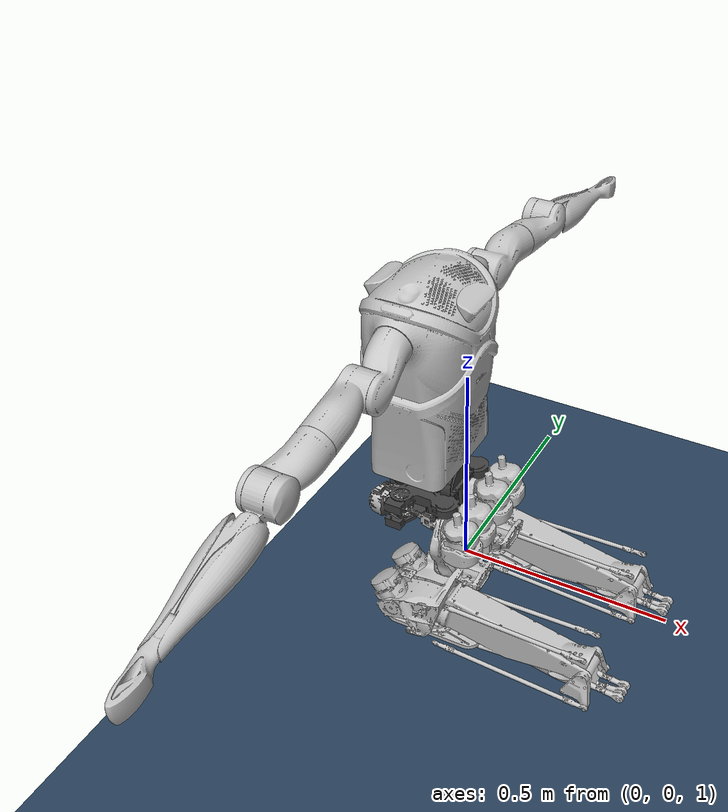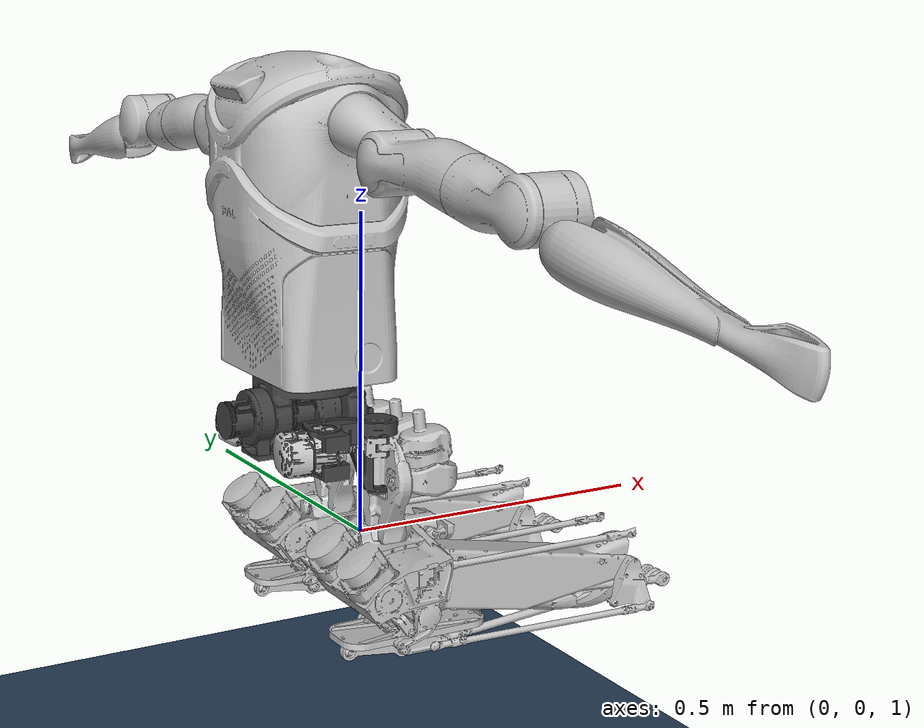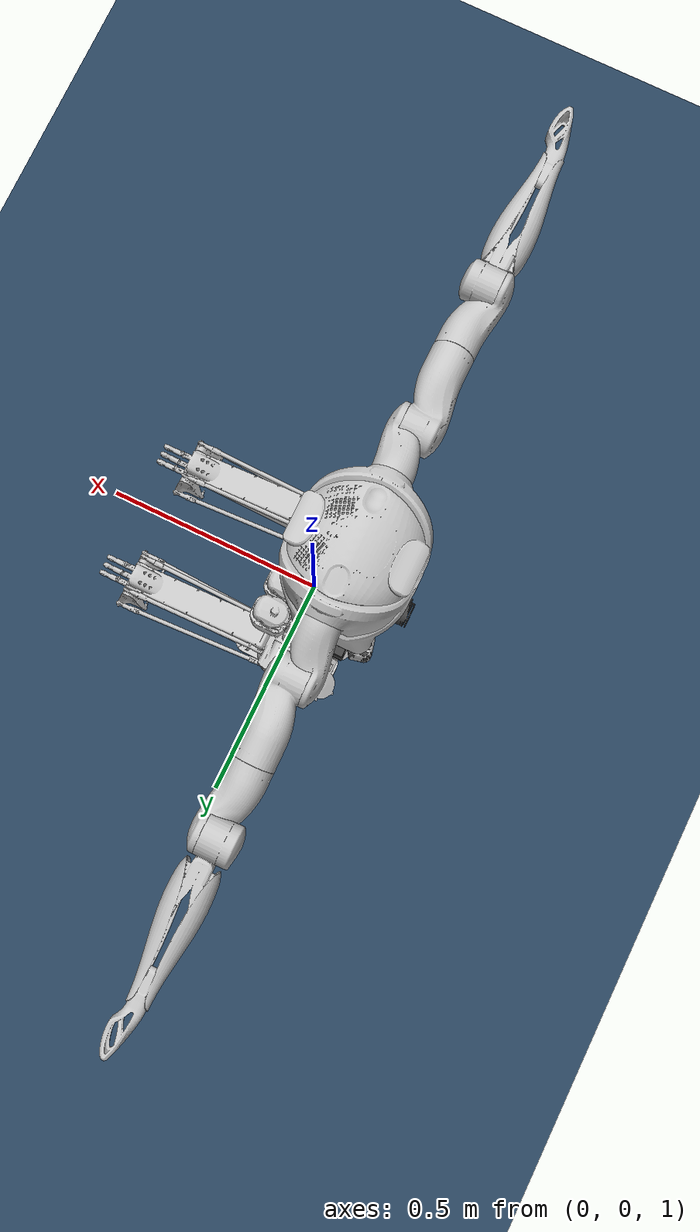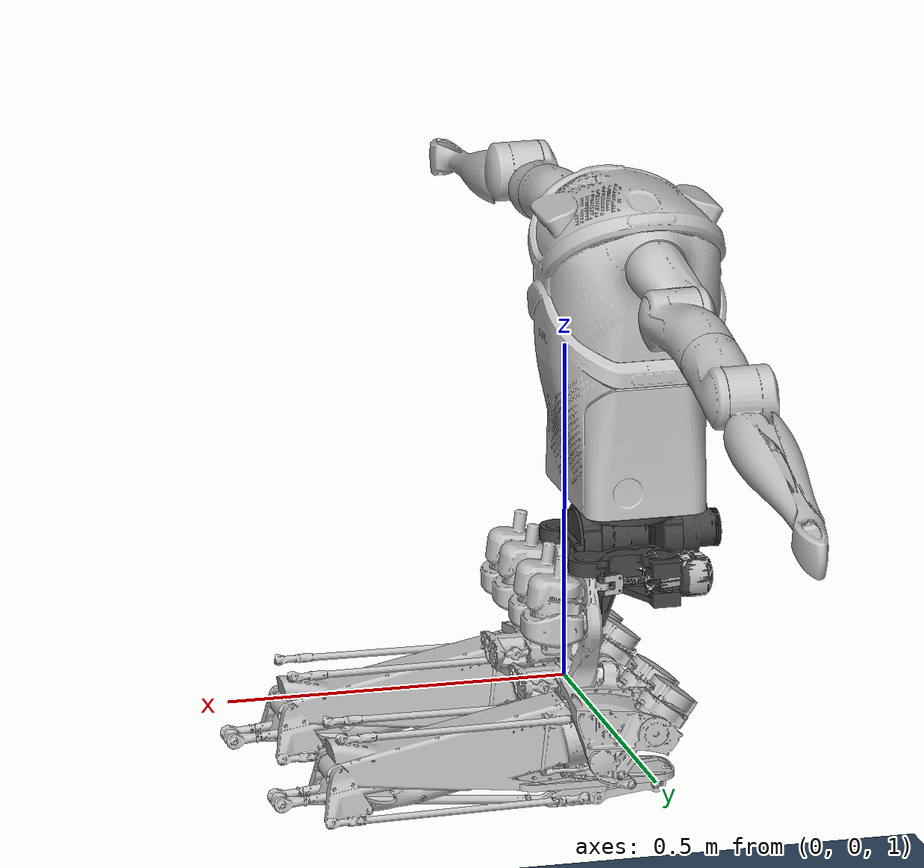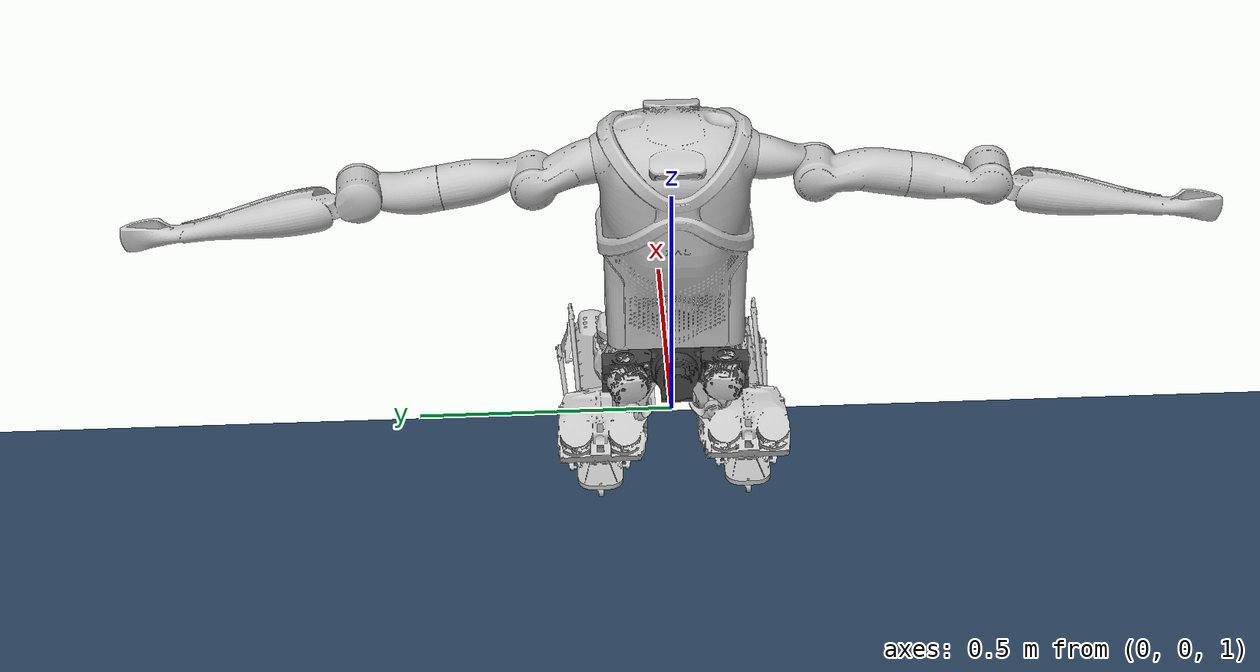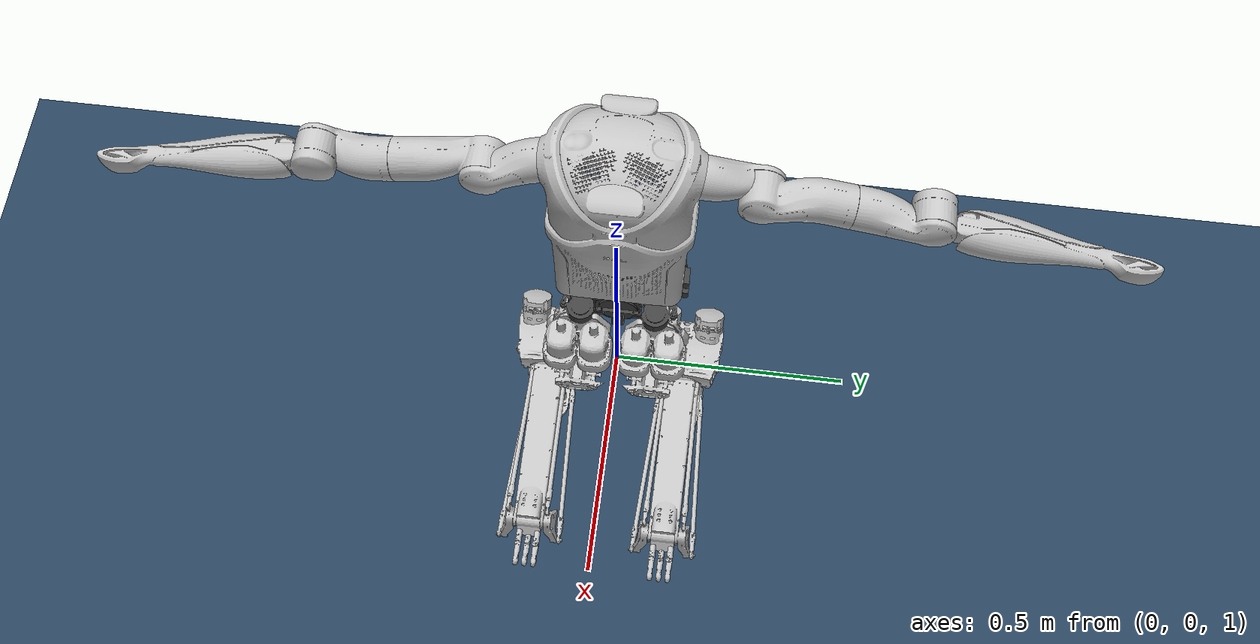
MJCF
<mujoco model="kangaroo scene">
  <compiler angle="radian" meshdir="meshes" autolimits="true"/>

  <option timestep="0.001" iterations="1" ls_iterations="5">
    <flag eulerdamp="disable"/>
  </option>

  <size nkey="1"/>

  <statistic meansize="0.04" extent="1.8" center="0 0 1"/>

  <default>
    <joint limited="true" armature="0.1" damping="10" frictionloss="1"/>
    <site size="0.01 0.005 0.005" group="5" rgba="1 0 0 1"/>
    <default class="visual">
        <geom type="mesh" contype="0" conaffinity="0" group="1" density="0"/>
    </default>
    <default class="collision">
        <geom type="capsule" group="3" material="bright_orange"/>
    </default>
  </default>

  <asset>
    <material name="dark_gray" rgba="0.25098 0.25098 0.25098 1"/>
    <material name="light_gray" rgba="0.75294 0.75294 0.75294 1"/>
    <material name="light_blue_gray" rgba="0.894118 0.913725 0.929412 1"/>
    <material name="bright_orange" rgba="1 0.65 0 0.2"/>

    <texture type="skybox" colorspace="auto" builtin="gradient" rgb1="0.3 0.5 0.7" rgb2="0 0 0" width="512" height="3072"/>
    <texture type="2d" colorspace="auto" name="groundplane" builtin="checker" mark="edge" rgb1="0.2 0.3 0.4" rgb2="0.1 0.2 0.3" markrgb="0.8 0.8 0.8" width="300" height="300"/>
    <material name="groundplane" texture="groundplane" texuniform="true" texrepeat="5 5" reflectance="0.2"/>

    <mesh name="base_link_with_pelvis" content_type="model/stl" file="base_link_with_pelvis.stl"/>
    <mesh name="pelvis_base_link" content_type="model/stl" file="pelvis_base_link.stl"/>
    <mesh name="pelvis_1_link" content_type="model/stl" file="pelvis_1_link.stl"/>
    <mesh name="pelvis_2_link" content_type="model/stl" file="pelvis_2_link.stl"/>
    <mesh name="torso_link" content_type="model/stl" file="torso_link.stl"/>
    <mesh name="leg_left_1_link" content_type="model/stl" file="leg_left_1_link.stl"/>
    <mesh name="leg_left_2_link" content_type="model/stl" file="leg_left_2_link.stl"/>
    <mesh name="leg_left_3_link" content_type="model/stl" file="leg_left_3_link.stl"/>
    <mesh name="leg_femur_link" content_type="model/stl" file="leg_femur_link.stl"/>
    <mesh name="leg_tibia_link" content_type="model/stl" file="leg_tibia_link.stl"/>
    <mesh name="leg_6_link" content_type="model/stl" file="leg_6_link.stl"/>
    <mesh name="leg_7_link" content_type="model/stl" file="leg_7_link.stl"/>
    <mesh name="leg_right_1_link" content_type="model/stl" file="leg_right_1_link.stl"/>
    <mesh name="leg_right_2_link" content_type="model/stl" file="leg_right_2_link.stl"/>
    <mesh name="leg_right_3_link" content_type="model/stl" file="leg_right_3_link.stl"/>
    <mesh name="arm_base_link" content_type="model/stl" file="arm_base_link.stl"/>
    <mesh name="arm_1_link" content_type="model/stl" file="arm_1_link.stl"/>
    <mesh name="arm_2_link" content_type="model/stl" file="arm_2_link.stl"/>
    <mesh name="arm_3_link" content_type="model/stl" file="arm_3_link.stl"/>
    <mesh name="arm_left_4_link" content_type="model/stl" file="arm_left_4_link.stl"/>
    <mesh name="arm_right_4_link" content_type="model/stl" file="arm_right_4_link.stl"/>
  </asset>

  <worldbody>
    <geom name="floor" size="0 0 0.05" type="plane" material="groundplane"/>
    <light name="spotlight" target="base_link" pos="1 0 20" dir="0 0 -1" mode="targetbody"/>
    <body name="base_link" pos="0 0 1.2">
      <inertial pos="-0.10388 0.00292576 -0.0173482" quat="0.534501 0.501589 -0.492841 0.468855" mass="4.49765"
        diaginertia="0.0360221 0.0259667 0.017944"/>
      <joint name="origin" type="free"/>
      <geom class="visual" material="dark_gray" mesh="base_link_with_pelvis"/>
      <geom pos="-0.0918 0 -0.0455" quat="1 0 0 0" class="visual" material="dark_gray" mesh="pelvis_base_link"/>
      <site name="torso_frame" pos="-0.1 -0.01891 0.35"/>
      <camera name="track" pos="1.678 -2.065 0.499" quat="0.73208 0.595558 0.208701 0.256543" mode="trackcom"/>
      <camera name="side" pos="0 -2.2 1" quat="0.850651 0.525731 0 0" mode="trackcom"/>
      <camera name="back" pos="-2.2 0 1" quat="0.601501 0.371748 -0.371748 -0.601501" mode="trackcom"/>
      <camera name="front" pos="2.2 0 1" quat="0.601501 0.371748 0.371748 0.601501" mode="trackcom"/>
      <body name="pelvis_1_link" pos="-0.0918 0 0.0065" quat="0.707105 0 0.707108 0">
        <inertial pos="-0.02593 -1e-06 0.001466" quat="0.99984 0 -0.0179004 0" mass="1.24856"
          diaginertia="0.00539676 0.004808 0.00324424"/>
        <joint name="pelvis_1_joint" axis="0 0 -1" range="-0.349066 0.349066"/>
        <geom class="visual" material="dark_gray" mesh="pelvis_1_link"/>
        <body name="pelvis_2_link" pos="-0.0591 0 0" quat="0.707105 0 -0.707108 0">
          <inertial pos="-0.0094475 -0.000699115 0.225171" quat="0.999839 0.0102462 0.00296523 -0.0144017" mass="14.1163"
            diaginertia="0.334022 0.305744 0.125574"/>
          <joint name="pelvis_2_joint" axis="0 0 -1" range="-1.309 1.309"/>
          <geom class="visual" material="dark_gray" mesh="pelvis_2_link"/>
          <geom pos="0 0 0.0061" class="visual" material="light_gray" mesh="torso_link"/>
          <geom name="pelvis_2_collision" size="0.163724 0.162985" pos="4.77798e-07 -1.67441e-06 0.234507" quat="1 -3.97075e-06 -1.19191e-05 0" class="collision"/>
          <geom pos="0 0.105954 0.390496" quat="0.766033 0.642802 0 0" class="visual" material="light_gray" mesh="arm_base_link"/>
          <geom pos="0 -0.105954 0.390496" quat="1.01637e-06 8.52866e-07 0.642802 0.766033" class="visual" material="light_gray" mesh="arm_base_link"/>
          <site name="imu" pos="0.071 -0.0014 0.0261" quat="0 -0.707107 0.707107 0"/>
          <body name="arm_left_1_link" pos="0 0.120835 0.387873" quat="0.766033 0.642802 0 0">
            <inertial pos="-0.0065019 -0.002469 -0.040465" quat="0.939587 0.00749227 -0.143667 0.310611" mass="0.84824"
              diaginertia="0.00252565 0.00231317 0.000718382"/>
            <joint name="arm_left_1_joint" axis="0 0 -1" range="-2.618 2.618"/>
            <geom class="visual" material="light_gray" mesh="arm_1_link"/>
            <body name="arm_left_2_link" pos="-0.028337 -0.02 -0.155" quat="0.707105 0 -0.707108 0">
              <inertial pos="-0.0295938 0.0049455 -0.024457" quat="0.205775 0.624918 0.297011 0.69204" mass="0.944175"
                diaginertia="0.00378412 0.0036803 0.000932577"/>
              <joint name="arm_left_2_joint" range="-1.1345 2.4435"/>
              <geom class="visual" material="light_gray" mesh="arm_2_link"/>
              <geom name="arm_left_2_collision" size="0.0645032 0.0664882" pos="-0.0638385 0.00999977 -0.0388" quat="0.659371 0.116779 0.742693 -1.43134e-06" class="collision"/>
              <body name="arm_left_3_link" pos="-0.175 0.02 -0.028337" quat="0.707105 0 0.707108 0">
                <inertial pos="0.0055739 0.0021181 -0.0345099" quat="0.939747 -0.00744705 0.146164 0.308959" mass="0.98919"
                  diaginertia="0.00277623 0.00255027 0.000868792"/>
                <joint name="arm_left_3_joint" axis="0 0 -1" range="-2.618 2.618"/>
                <geom class="visual" material="light_gray" mesh="arm_3_link"/>
                <body name="arm_left_4_link" pos="0.0283 0.02 -0.155" quat="0.707105 0 0.707108 0">
                  <inertial pos="0.0752641 -0.0079317 -0.023427" quat="0.573967 0.373833 0.602191 0.410095" mass="1.43535"
                    diaginertia="0.0210305 0.0210101 0.00117153"/>
                  <joint name="arm_left_4_joint" range="-1.1345 2.4435"/>
                  <geom class="visual" material="light_gray" mesh="arm_left_4_link"/>
                  <geom name="arm_left_4_collision" size="0.054849 0.219217" pos="0.210246 -0.0167497 -0.0171982" quat="0.733112 0.0532001 0.678025 -2.2842e-07" class="collision"/>
                  <site name="arm_left_frame" pos="0.4 -0.02 0.0"/>
                  <body name="arm_left_tip_link" pos="0.4 -0.02 0.0"/>
                </body>
              </body>
            </body>
          </body>
          <body name="arm_right_1_link" pos="-3.94869e-08 -0.120835 0.387873" quat="1.01637e-06 8.52866e-07 0.642802 0.766033">
            <inertial pos="-0.0065019 -0.002469 -0.040465" quat="0.939587 0.00749227 -0.143667 0.310611" mass="0.84824"
              diaginertia="0.00252565 0.00231317 0.000718382"/>
            <joint name="arm_right_1_joint" axis="0 0 -1" range="-2.618 2.618"/>
            <geom class="visual" material="light_gray" mesh="arm_1_link"/>
            <body name="arm_right_2_link" pos="-0.028337 -0.02 -0.155" quat="0.707105 0 -0.707108 0">
              <inertial pos="-0.0295938 0.0049455 -0.024457" quat="0.205775 0.624918 0.297011 0.69204" mass="0.944175"
                diaginertia="0.00378412 0.0036803 0.000932577"/>
              <joint name="arm_right_2_joint" range="-1.1345 2.4435"/>
              <geom class="visual" material="light_gray" mesh="arm_2_link"/>
              <geom name="arm_right_2_collision" size="0.0645032 0.0664882" pos="-0.0638385 0.00999977 -0.0388" quat="0.659371 0.116779 0.742693 -1.43134e-06" class="collision"/>
              <body name="arm_right_3_link" pos="-0.175 0.02 -0.028337" quat="0.707105 0 0.707108 0">
                <inertial pos="0.0055739 0.0021181 -0.0345099" quat="0.939747 -0.00744705 0.146164 0.308959" mass="0.98919"
                  diaginertia="0.00277623 0.00255027 0.000868792"/>
                <joint name="arm_right_3_joint" axis="0 0 -1" range="-2.618 2.618"/>
                <geom class="visual" material="light_gray" mesh="arm_3_link"/>
                <body name="arm_right_4_link" pos="0.0283 0.02 -0.155" quat="0.707105 0 0.707108 0">
                  <inertial pos="0.0752641 -0.0079317 -0.023427" quat="0.573967 0.373833 0.602191 0.410095" mass="1.43535"
                    diaginertia="0.0210305 0.0210101 0.00117153"/>
                  <joint name="arm_right_4_joint" range="-1.1345 2.4435"/>
                  <geom class="visual" material="light_gray" mesh="arm_right_4_link"/>
                  <geom name="arm_right_4_collision" size="0.0559132 0.220143" pos="0.210649 -0.0172373 -0.0265895" quat="0.717524 0.0513886 0.694636 -1.38234e-06" class="collision"/>
                  <site name="arm_right_frame" pos="0.4 -0.02 0.0"/>
                  <body name="arm_right_tip_link" pos="0.4 -0.02 0.0"/>
                </body>
              </body>
            </body>
          </body>
        </body>
      </body>
      <body name="leg_left_1_link" pos="-0.0150026 0.08 -0.0585">
        <inertial pos="0.0063167 0.0045949 -0.0083828" quat="0.99829 -0.0115969 -0.0468646 0.0329665" mass="2.7478"
          diaginertia="0.00193869 0.00182214 0.00142127"/>
        <joint name="leg_left_1_joint" range="-0.261799 0.698132"/>
        <geom class="visual" material="light_gray" mesh="leg_left_1_link"/>
        <geom name="leg_left_1_collision" size="0.0795723 0.0413497" pos="-0.0236664 0.00650664 -0.00579961" quat="0.539802 0.154604 0.827473 1.45962e-06" class="collision"/>
        <body name="leg_left_2_link" pos="0.015024 0 -0.1175">
          <inertial pos="-0.0029278 -9.6207e-05 1.0866e-09" quat="0.500354 0.500354 0.499645 0.499645" mass="0.0905312"
            diaginertia="3.88542e-05 3.62287e-05 6.1016e-06"/>
          <joint name="leg_left_2_joint" axis="0 1 0" range="-0.741765 0.663225"/>
          <geom class="visual" material="light_blue_gray" mesh="leg_left_2_link"/>
          <body name="leg_left_3_link">
            <inertial pos="-0.033949 0.049989 -0.030543" quat="0.0645597 0.615939 -0.131914 0.773983" mass="3.658"
              diaginertia="0.00327114 0.00320831 0.00250706"/>
            <joint name="leg_left_3_joint" axis="1 0 0" range="-0.471239 0.471239"/>
            <geom class="visual" material="light_gray" mesh="leg_left_3_link"/>
            <body name="leg_left_length_link" pos="0 0.0669 -0.09" quat="0 0 1 0">
              <inertial mass="0.1" pos="0 0 0" diaginertia="8.58333e-05 8.58333e-05 5e-06"/>
              <joint name="leg_left_length_joint" type="slide" range="0.0 0.714166"/>
              <body name="leg_left_4_link" quat="-0.173648 0 0.984808 0">
                <inertial pos="-0.00759995 -6.94998e-09 5.88281e-08" quat="3.61787e-06 0.707107 3.61787e-06 0.707106" mass="0.0905838"
                  diaginertia="2.98863e-05 2.92763e-05 4.05264e-06"/>
                <joint name="leg_left_4_joint" axis="0 1 0" range="-0.741765 0.663225"/>
                <geom quat="0.984808 0 -0.173648 0" class="visual" material="light_gray" mesh="leg_6_link"/>
                <body name="leg_left_5_link">
                  <inertial pos="0.00560127 -5.98529e-06 -0.0297244" quat="-8.95501e-06 0.58162 -1.58775e-05 0.813461" mass="0.61563"
                    diaginertia="0.0019868 0.00170803 0.000338695"/>
                  <joint name="leg_left_5_joint" axis="-1 0 0" range="-0.471239 0.471239"/>
                  <geom class="visual" material="light_gray" mesh="leg_7_link"/>
                  <geom name="left_foot_collision" size="0.045 0.005 0.1205" pos="0.01305 0 -0.035" quat="0.579228 0.40558 0.40558 0.579228" type="box" group="3" material="bright_orange"/>
                  <site name="left_foot" pos="0.0575 0 -0.01" size="0.015"/>
                </body>
              </body>
            </body>
            <body name="leg_left_femur_link" pos="0 0.0669 -0.09" quat="0.819152 0 -0.573576 0">
              <inertial pos="0.0527475 0.000135688 -0.146959" quat="0.720223 -0.0942418 -0.0980078 0.680288" mass="3.94567"
                diaginertia="0.0121138 0.0118241 0.00184947"/>
              <joint name="leg_left_femur_joint" axis="0 1 0" range="0.0 1.22173"/>
              <geom class="visual" material="light_gray" mesh="leg_femur_link"/>
              <geom name="leg_left_femur_collision" size="0.0910718 0.15" pos="0.043456 0.000622273 -0.115825" quat="0.194464 0.00344037 0.980904 2.41185e-06" class="collision"/>
              <body name="leg_left_knee_link" pos="0.129945 0 -0.357092" quat="0.34202 0 0.939693 0">
                <inertial pos="-0.0569665 -5.4131e-05 -0.148821" quat="0.698616 0.0970713 0.0960701 0.702341" mass="1.02238"
                  diaginertia="0.00215347 0.00207236 0.000258578"/>
                <joint name="leg_left_knee_joint" axis="0 -1 0" range="0.0 2.44346"/>
                <geom class="visual" material="light_gray" mesh="leg_tibia_link"/>
                <geom name="leg_left_knee_collision" size="0.04 0.12" pos="-0.0455604 -7.35027e-05 -0.174883" quat="0.963852 -0.000204 0.266438 1.8e-05" class="collision"/>
              </body>
            </body>
          </body>
        </body>
      </body>
      <body name="leg_right_1_link" pos="-0.0150026 -0.08 -0.0585">
        <inertial pos="0.0063167 -0.0045949 -0.0083828" quat="0.998081 0.0061833 0.0472134 -0.0395937" mass="2.7478"
          diaginertia="0.00193889 0.00182188 0.00142133"/>
        <joint name="leg_right_1_joint" range="-0.698132 0.261799"/>
        <geom class="visual" material="light_gray" mesh="leg_right_1_link"/>
        <geom name="leg_right_1_collision" size="0.0795723 0.0413497" pos="-0.0236664 -0.00650664 -0.00579961" quat="0.539802 -0.154604 0.827473 -1.45962e-06" class="collision"/>
        <body name="leg_right_2_link" pos="0.015024 0 -0.1175">
          <inertial pos="-0.0029278 -9.6207e-05 1.0866e-09" quat="0.500354 0.500354 0.499645 0.499645" mass="0.0905312"
            diaginertia="3.88542e-05 3.62287e-05 6.1016e-06"/>
          <joint name="leg_right_2_joint" axis="0 1 0" range="-0.741765 0.663225"/>
          <geom class="visual" material="light_blue_gray" mesh="leg_right_2_link"/>
          <body name="leg_right_3_link">
            <inertial pos="-0.033949 -0.049989 -0.030543" quat="-0.276874 0.75747 -0.131896 0.576353" mass="3.658"
              diaginertia="0.00331808 0.0031534 0.00251503"/>
            <joint name="leg_right_3_joint" axis="1 0 0" range="-0.471239 0.471239"/>
            <geom class="visual" material="light_gray" mesh="leg_right_3_link"/>
            <body name="leg_right_length_link" pos="0 -0.0669 -0.09" quat="0 0 1 0">
              <inertial mass="0.1" pos="0 0 0" diaginertia="8.58333e-05 8.58333e-05 5e-06"/>
              <joint name="leg_right_length_joint" type="slide" range="0.0 0.714166"/>
              <body name="leg_right_4_link" quat="-0.173648 0 0.984808 0">
                <inertial pos="-0.00759995 -6.94998e-09 5.88281e-08" quat="3.61787e-06 0.707107 3.61787e-06 0.707106" mass="0.0905838"
                  diaginertia="2.98863e-05 2.92763e-05 4.05264e-06"/>
                <joint name="leg_right_4_joint" axis="0 1 0" range="-0.741765 0.663225"/>
                <geom quat="0.984808 0 -0.173648 0" class="visual" material="light_gray" mesh="leg_6_link"/>
                <body name="leg_right_5_link">
                  <inertial pos="0.00560127 -5.98529e-06 -0.0297244" quat="-8.95501e-06 0.58162 -1.58775e-05 0.813461" mass="0.61563"
                    diaginertia="0.0019868 0.00170803 0.000338695"/>
                  <joint name="leg_right_5_joint" axis="-1 0 0" range="-0.471239 0.471239"/>
                  <geom class="visual" material="light_gray" mesh="leg_7_link"/>
                  <geom name="right_foot_collision" size="0.045 0.005 0.1205" pos="0.01305 0 -0.035" quat="0.579228 0.40558 0.40558 0.579228" type="box" group="3" material="bright_orange"/>
                  <site name="right_foot" pos="0.0575 0 -0.01" size="0.015"/>
                </body>
              </body>
            </body>
            <body name="leg_right_femur_link" pos="0 -0.0669 -0.09" quat="0.819152 0 -0.573576 0">
              <inertial pos="0.0527475 0.000135688 -0.146959" quat="0.720223 -0.0942418 -0.0980078 0.680288" mass="3.94567"
                diaginertia="0.0121138 0.0118241 0.00184947"/>
              <joint name="leg_right_femur_joint" axis="0 1 0" range="0.0 1.22173"/>
              <geom class="visual" material="light_gray" mesh="leg_femur_link"/>
              <geom name="leg_right_femure_collision" size="0.0910718 0.15" pos="0.043456 0.000622273 -0.115825" quat="0.194464 0.00344037 0.980904 2.41185e-06" class="collision"/>
              <body name="leg_right_knee_link" pos="0.129945 0 -0.357092" quat="0.34202 0 0.939693 0">
                <inertial pos="-0.0569665 -5.4131e-05 -0.148821" quat="0.698616 0.0970713 0.0960701 0.702341" mass="1.02238"
                  diaginertia="0.00215347 0.00207236 0.000258578"/>
                <joint name="leg_right_knee_joint" axis="0 -1 0" range="0.0 2.44346"/>
                <geom class="visual" material="light_gray" mesh="leg_tibia_link"/>
                <geom name="leg_right_knee_collision" size="0.04 0.12" pos="-0.0455604 -7.35027e-05 -0.174883" quat="0.963852 -0.000204 0.266438 1.8e-05" class="collision"/>
              </body>
            </body>
          </body>
        </body>
      </body>
    </body>
  </worldbody>

  <contact>
    <exclude body1="pelvis_2_link" body2="leg_left_1_link"/>
    <exclude body1="pelvis_2_link" body2="leg_right_1_link"/>

    <exclude body1="leg_left_1_link" body2="leg_right_1_link"/>

    <exclude body1="leg_left_1_link" body2="leg_left_femur_link"/>
    <exclude body1="leg_left_5_link" body2="leg_left_femur_link"/>
    <exclude body1="leg_left_5_link" body2="leg_left_knee_link"/>
    <exclude body1="leg_left_femur_link" body2="leg_left_knee_link"/>

    <exclude body1="leg_right_1_link" body2="leg_right_femur_link"/>
    <exclude body1="leg_right_5_link" body2="leg_right_femur_link"/>
    <exclude body1="leg_right_5_link" body2="leg_right_knee_link"/>
    <exclude body1="leg_right_femur_link" body2="leg_right_knee_link"/>
  </contact>

  <equality>
    <connect name="leg_left_closed_kin_joint" body1="leg_left_4_link" body2="leg_left_knee_link" anchor="0 0 0" solref="0.002"/>
    <connect name="leg_right_closed_kin_joint" body1="leg_right_4_link" body2="leg_right_knee_link" anchor="0 0 0" solref="0.002"/>
  </equality>

  <actuator>
    <general name="pelvis_1_actuator_position" joint="pelvis_1_joint" group="2" ctrllimited="true" ctrlrange="-0.349066 0.349066" biastype="affine" gainprm="500" biasprm="0 -500"/>
    <general name="pelvis_2_actuator_position" joint="pelvis_2_joint" group="2" ctrllimited="true" ctrlrange="-1.309 1.309" biastype="affine" gainprm="500" biasprm="0 -500"/>
    <general name="arm_left_1_actuator_position" joint="arm_left_1_joint" group="2" ctrllimited="true" ctrlrange="-2.618 2.618" biastype="affine" gainprm="100" biasprm="0 -100"/>
    <general name="arm_left_2_actuator_position" joint="arm_left_2_joint" group="2" ctrllimited="true" ctrlrange="-1.1345 2.4435" biastype="affine" gainprm="100" biasprm="0 -100"/>
    <general name="arm_left_3_actuator_position" joint="arm_left_3_joint" group="2" ctrllimited="true" ctrlrange="-2.618 2.618" biastype="affine" gainprm="100" biasprm="0 -100"/>
    <general name="arm_left_4_actuator_position" joint="arm_left_4_joint" group="2" ctrllimited="true" ctrlrange="-1.1345 2.4435" biastype="affine" gainprm="100" biasprm="0 -100"/>
    <general name="arm_right_1_actuator_position" joint="arm_right_1_joint" group="2" ctrllimited="true" ctrlrange="-2.618 2.618" biastype="affine" gainprm="100" biasprm="0 -100"/>
    <general name="arm_right_2_actuator_position" joint="arm_right_2_joint" group="2" ctrllimited="true" ctrlrange="-1.1345 2.4435" biastype="affine" gainprm="100" biasprm="0 -100"/>
    <general name="arm_right_3_actuator_position" joint="arm_right_3_joint" group="2" ctrllimited="true" ctrlrange="-2.618 2.618" biastype="affine" gainprm="100" biasprm="0 -100"/>
    <general name="arm_right_4_actuator_position" joint="arm_right_4_joint" group="2" ctrllimited="true" ctrlrange="-1.1345 2.4435" biastype="affine" gainprm="100" biasprm="0 -100"/>
    <general name="leg_left_1_actuator_position" joint="leg_left_1_joint" group="2" ctrllimited="true" ctrlrange="-0.261799 0.698132" biastype="affine" gainprm="500" biasprm="0 -500"/>
    <general name="leg_left_2_actuator_position" joint="leg_left_2_joint" group="2" ctrllimited="true" ctrlrange="-0.741765 0.741765" biastype="affine" gainprm="500" biasprm="0 -500"/>
    <general name="leg_left_3_actuator_position" joint="leg_left_3_joint" group="2" ctrllimited="true" ctrlrange="-0.471239 0.471239" biastype="affine" gainprm="500" biasprm="0 -500"/>
    <general name="leg_left_length_actuator_position" joint="leg_left_length_joint" group="2" ctrllimited="true" ctrlrange="0.131973 0.714166" biastype="affine" gainprm="3000" biasprm="0 -3000"/>
    <general name="leg_left_4_actuator_position" joint="leg_left_4_joint" group="2" ctrllimited="true" ctrlrange="-0.741765 0.741765" biastype="affine" gainprm="100" biasprm="0 -100"/>
    <general name="leg_left_5_actuator_position" joint="leg_left_5_joint" group="2" ctrllimited="true" ctrlrange="-0.471239 0.471239" biastype="affine" gainprm="100" biasprm="0 -100"/>
    <general name="leg_right_1_actuator_position" joint="leg_right_1_joint" group="2" ctrllimited="true" ctrlrange="-0.261799 0.698132" biastype="affine" gainprm="500" biasprm="0 -500"/>
    <general name="leg_right_2_actuator_position" joint="leg_right_2_joint" group="2" ctrllimited="true" ctrlrange="-0.741765 0.741765" biastype="affine" gainprm="500" biasprm="0 -500"/>
    <general name="leg_right_3_actuator_position" joint="leg_right_3_joint" group="2" ctrllimited="true" ctrlrange="-0.471239 0.471239" biastype="affine" gainprm="500" biasprm="0 -500"/>
    <general name="leg_right_length_actuator_position" joint="leg_right_length_joint" group="2" ctrllimited="true" ctrlrange="0.131973 0.714166" biastype="affine" gainprm="3000" biasprm="0 -3000"/>
    <general name="leg_right_4_actuator_position" joint="leg_right_4_joint" group="2" ctrllimited="true" ctrlrange="-0.741765 0.741765" biastype="affine" gainprm="100" biasprm="0 -100"/>
    <general name="leg_right_5_actuator_position" joint="leg_right_5_joint" group="2" ctrllimited="true" ctrlrange="-0.471239 0.471239" biastype="affine" gainprm="100" biasprm="0 -100"/>
  </actuator>

</mujoco>
